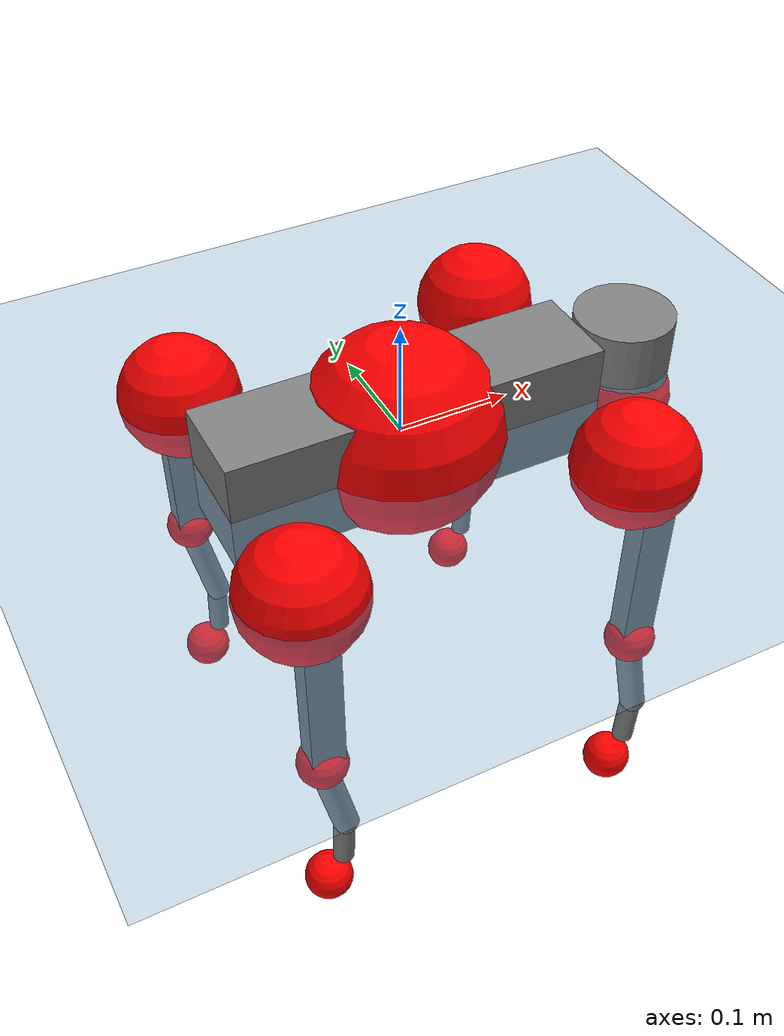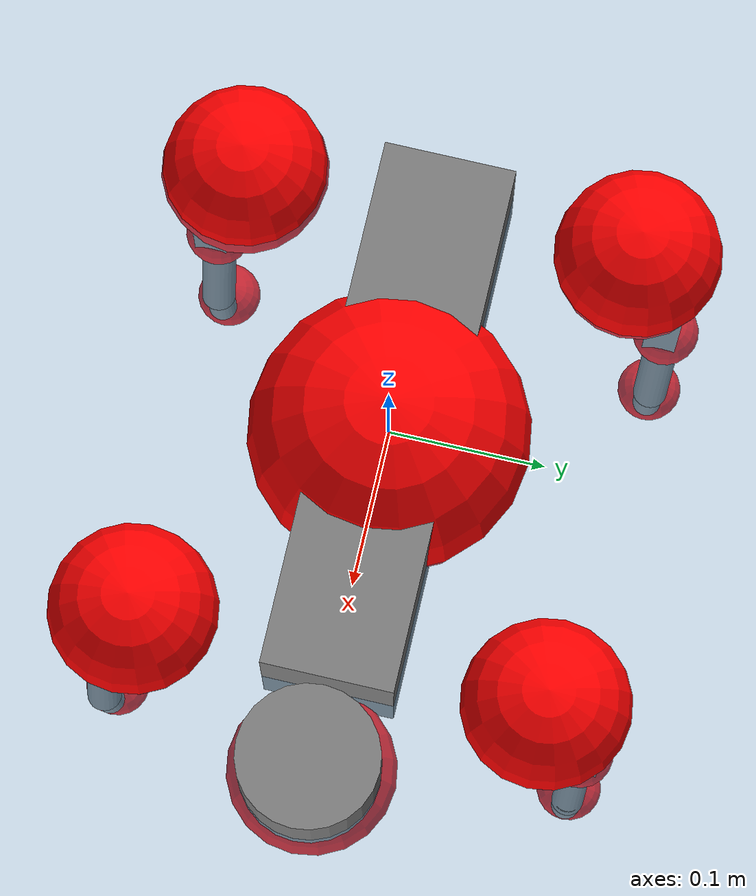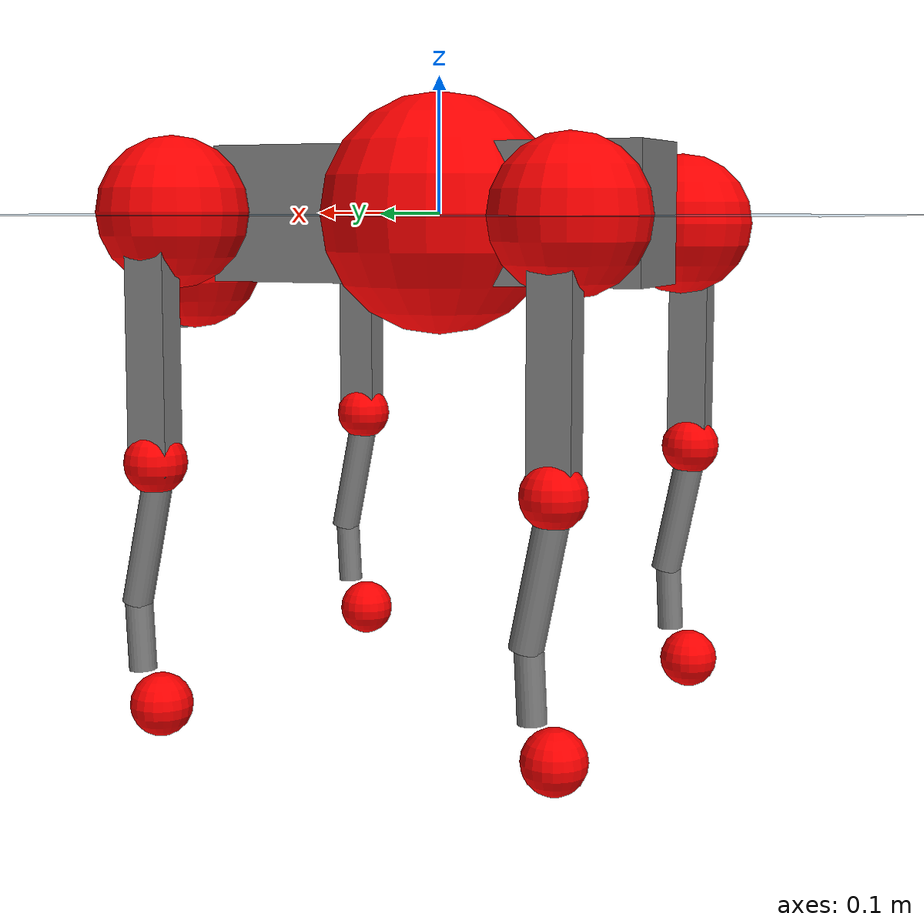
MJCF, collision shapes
<mujoco model="go2">
  <compiler angle="radian" assetdir="assets" balanceinertia="true" inertiafromgeom="false"/>

  <option timestep="0.005" density="1.2" viscosity="2e-05"/>

  <size nkey="1"/>

  <visual>
    <quality shadowsize="8192"/>
    <map shadowclip="0.5"/>
  </visual>

  <default>
    <default class="/">
      <geom contype="0" conaffinity="0" group="1" solref="-1000 -80"/>
      <site size="0.01 0.005 0.005" group="5"/>
      <general forcelimited="true" biastype="affine" gainprm="20" biasprm="0 -20 -0.5"/>
      <default class="go2">
        <joint armature="0.01" damping="0.01" frictionloss="0.2"/>
        <geom condim="1" margin="0.001"/>
        <default class="visual">
          <geom type="mesh" group="2"/>
        </default>
        <default class="collision">
          <geom group="3"/>
          <default class="foot">
            <geom size="0.022 0 0" condim="6" priority="1" friction="0.8 0.02 0.01" solimp="0.015 1 0.022"/>
          </default>
        </default>
        <default class="reward_collision_sphere">
          <geom group="5" rgba="1 0 0 1"/>
        </default>
      </default>
    </default>
  </default>

  <asset>
    <texture type="skybox" colorspace="auto" name="//unnamed_texture_0" builtin="gradient" rgb1="0.95 0.95 0.95" rgb2="0.95 0.95 0.95" width="100" height="600"/>
    <texture type="2d" colorspace="auto" name="texplane" builtin="checker" rgb1="0.345 0.575 0.748" rgb2="0.345 0.575 0.748" markrgb="1 1 1" width="512" height="512"/>
    <material name="MatPlane" class="/" texture="texplane" texuniform="true" texrepeat="2 2" specular="0.9"/>
    <material name="metal" class="/" rgba="0.9 0.95 0.95 1"/>
    <material name="black" class="/" rgba="0 0 0 1"/>
    <material name="white" class="/"/>
    <material name="gray" class="/" rgba="0.671705 0.692426 0.77427 1"/>
    <mesh name="base_0" class="/" file="base_0.obj"/>
    <mesh name="base_1" class="/" file="base_1.obj"/>
    <mesh name="base_2" class="/" file="base_2.obj"/>
    <mesh name="base_3" class="/" file="base_3.obj"/>
    <mesh name="base_4" class="/" file="base_4.obj"/>
    <mesh name="hip_0" class="/" file="hip_0.obj"/>
    <mesh name="hip_1" class="/" file="hip_1.obj"/>
    <mesh name="thigh_0" class="/" file="thigh_0.obj"/>
    <mesh name="thigh_1" class="/" file="thigh_1.obj"/>
    <mesh name="thigh_mirror_0" class="/" file="thigh_mirror_0.obj"/>
    <mesh name="thigh_mirror_1" class="/" file="thigh_mirror_1.obj"/>
    <mesh name="calf_0" class="/" file="calf_0.obj"/>
    <mesh name="calf_1" class="/" file="calf_1.obj"/>
    <mesh name="calf_mirror_0" class="/" file="calf_mirror_0.obj"/>
    <mesh name="calf_mirror_1" class="/" file="calf_mirror_1.obj"/>
    <mesh name="foot" class="/" file="foot.obj"/>
  </asset>

  <worldbody>
    <geom name="floor" class="/" size="100 100 0.125" type="plane" group="0" material="MatPlane"/>
    <light name="toplight_shadow" class="/" pos="0 0 5" dir="0.0990148 0.0990148 -0.990148" type="directional" ambient="0.04 0.04 0.04" diffuse="0.55 0.55 0.55" specular="0.12 0.12 0.12"/>
    <light name="toplight_fill" class="/" pos="0 0 5" dir="0.0990148 0.0990148 -0.990148" type="directional" castshadow="false" ambient="0.04 0.04 0.04" diffuse="0.3 0.3 0.3" specular="0.08 0.08 0.08"/>
    <body name="trunk" childclass="go2" pos="-0.00012325 0.0001905 3.90447e-05" quat="1 -5.14348e-05 0.000257983 -0.000183749">
      <inertial pos="0.0156965 0.00142851 -0.0042244" quat="-0.00336845 0.715414 -0.00354981 0.698684" mass="4.80422" diaginertia="0.0275422 0.163761 0.00850177"/>
      <joint name="//unnamed_joint_0" type="free" armature="0" damping="0" frictionloss="0"/>
      <geom name="//unnamed_geom_1" class="visual" material="black" mesh="base_0"/>
      <geom name="//unnamed_geom_2" class="visual" material="black" mesh="base_1"/>
      <geom name="//unnamed_geom_3" class="visual" material="black" mesh="base_2"/>
      <geom name="//unnamed_geom_4" class="visual" material="white" mesh="base_3"/>
      <geom name="//unnamed_geom_5" class="visual" material="gray" mesh="base_4"/>
      <geom name="trunk_1" class="collision" size="0.168507 0.0418803 0.0510626" type="box"/>
      <geom name="trunk_2" class="collision" size="0.0447917 0.0403126" pos="0.217381 0 0.00812618" type="cylinder"/>
      <geom name="trunk_3" class="collision" size="0.0421042" pos="0.223483 0 -0.0487571"/>
      <geom name="//unnamed_geom_9" class="reward_collision_sphere" size="0.0895835"/>
      <geom name="//unnamed_geom_10" class="reward_collision_sphere" size="0.0537501" pos="0.213567 0 -0.0365678"/>
      <site name="imu" pos="-0.0152912 0.0137816 0.0244858" size="0.00895835"/>
      <camera name="track" pos="0 -2.22429 0" quat="0.707107 0.707107 0 0" mode="trackcom"/>
      <camera name="ego_camera" pos="0.237975 0 0.0365678" quat="-0.5 -0.5 0.5 0.5"/>
      <body name="FL_hip" pos="0.146043 0.0555819 0.00117198" quat="1 -8.60667e-05 -0.000338351 -8.73234e-05">
        <inertial pos="-0.00518296 0.00137449 0.000506366" quat="0.496567 0.498996 0.505813 0.498576" mass="0.47023" diaginertia="0.000226461 0.000955176 0.000164348"/>
        <joint name="FL_hip_joint" pos="0 0 0" axis="0.999997 0.00181155 -0.00139992" range="-1.05468 1.10562" armature="0.00899961" damping="0" frictionloss="0.20447"/>
        <geom name="//unnamed_geom_11" class="visual" material="metal" mesh="hip_0"/>
        <geom name="//unnamed_geom_12" class="visual" material="gray" mesh="hip_1"/>
        <geom name="//unnamed_geom_13" class="collision" size="0.0412084 0.0179167" pos="0 0.0889716 0" quat="0.707107 0.707107 0 0" type="cylinder"/>
        <geom name="//unnamed_geom_14" class="reward_collision_sphere" size="0.0537501" pos="0 0.0778502 0"/>
        <body name="FL_thigh" pos="-0.00220695 0.109074 -0.000216277" quat="1 8.43615e-05 1.20835e-05 -7.82423e-05">
          <inertial pos="-0.00338986 -0.0250202 -0.025393" quat="0.833092 0.0760174 -0.0165109 0.547637" mass="0.828416" diaginertia="0.00153024 0.0097696 0.000299384"/>
          <joint name="FL_thigh_joint" pos="0 0 0" axis="-0.00593487 0.999954 -0.00758351" stiffness="0.00189929" range="-1.62399 3.50407" armature="0.00804946" damping="0.0176093" frictionloss="0.180197"/>
          <geom name="//unnamed_geom_15" class="visual" material="metal" mesh="thigh_0"/>
          <geom name="//unnamed_geom_16" class="visual" material="gray" mesh="thigh_1"/>
          <geom name="//unnamed_geom_17" class="collision" size="0.0954064 0.010974 0.0152292" pos="0 0 -0.0865438" quat="0.707107 0 0.707107 0" type="box"/>
          <body name="FL_calf" pos="0.00117044 -0.00241148 -0.174089" quat="1 0.000144661 -1.54435e-05 -7.38174e-06">
            <inertial pos="0.00568564 -0.00114729 -0.113349" quat="0.711034 0.00620623 -0.00265536 0.703125" mass="0.175365" diaginertia="0.000385492 0.00250377 1.90339e-05"/>
            <joint name="FL_calf_joint" pos="0 0 0" axis="-0.00455852 0.999927 0.0112304" range="-2.70774 -0.781178" armature="0.00828889" damping="0" frictionloss="0.176373"/>
            <geom name="//unnamed_geom_18" class="visual" material="gray" mesh="calf_0"/>
            <geom name="//unnamed_geom_19" class="visual" material="black" mesh="calf_1"/>
            <geom name="FL_calf0" class="collision" size="0.01075 0.0537501" pos="0.00610193 0 -0.0487571" quat="0.994493 0 -0.104807 0" type="cylinder"/>
            <geom name="//unnamed_geom_21" class="collision" size="0.00985418 0.0291146" pos="0.0152548 0 -0.120267" quat="0.999688 0 0.0249974 0" type="cylinder"/>
            <geom name="//unnamed_geom_22" class="visual" pos="0 0 -0.173088" quat="1 0 0 0" material="black" mesh="foot"/>
            <geom name="FL_foot" class="foot" size="0.0158356" pos="-0.00152548 0 -0.173088"/>
            <geom name="//unnamed_geom_24" class="reward_collision_sphere" size="0.0223959"/>
            <geom name="//unnamed_geom_25" class="reward_collision_sphere" size="0.0223959" pos="-0.00152548 0 -0.173088"/>
            <site name="FL_foot" class="foot" pos="-0.00152548 0 -0.173088" size="0.00895835"/>
          </body>
        </body>
      </body>
      <body name="FR_hip" pos="0.146194 -0.0511664 0.00326005" quat="1 -0.000118607 8.42148e-05 1.01894e-05">
        <inertial pos="-0.00617034 -0.00261943 -0.00142499" quat="0.49801 0.506272 0.498769 0.496895" mass="0.473375" diaginertia="0.000223964 0.00099659 0.000165765"/>
        <joint name="FR_hip_joint" pos="0 0 0" axis="0.999907 0.00185736 0.0135397" range="-1.05134 0.992441" armature="0.00961457" damping="0" frictionloss="0.202574"/>
        <geom name="//unnamed_geom_26" class="visual" pos="0 2.60936e-09 1.11921e-07" quat="4.63268e-05 1 0 0" material="metal" mesh="hip_0"/>
        <geom name="//unnamed_geom_27" class="visual" pos="0 4.23008e-09 -2.76823e-07" quat="4.63268e-05 1 0 0" material="gray" mesh="hip_1"/>
        <geom name="//unnamed_geom_28" class="collision" size="0.0412084 0.0179167" pos="0 -0.0889716 0" quat="0.707107 0.707107 0 0" type="cylinder"/>
        <geom name="//unnamed_geom_29" class="reward_collision_sphere" size="0.0537501" pos="0 -0.0778502 0"/>
        <body name="FR_thigh" pos="-7.92382e-05 -0.108957 -0.00297898" quat="0.999999 -0.00128918 0.000115956 -0.000445432">
          <inertial pos="-0.00496675 0.0238418 -0.029182" quat="0.549702 -0.0261121 0.0916832 0.829904" mass="0.847778" diaginertia="0.00151373 0.00969664 0.000321373"/>
          <joint name="FR_thigh_joint" pos="0 0 0" axis="-0.00116304 -0.999999 0.000441211" stiffness="0.00632167" range="-3.48577 1.51384" armature="0.00761782" damping="0.0176603" frictionloss="0.162017"/>
          <geom name="//unnamed_geom_30" class="visual" material="metal" mesh="thigh_mirror_0"/>
          <geom name="//unnamed_geom_31" class="visual" material="gray" mesh="thigh_mirror_1"/>
          <geom name="//unnamed_geom_32" class="collision" size="0.0954064 0.010974 0.0152292" pos="0 0 -0.0865438" quat="0.707107 0 0.707107 0" type="box"/>
          <body name="FR_calf" pos="-0.000927951 -0.00116986 -0.173128" quat="1 -0.00011789 0.000430855 0.000260968">
            <inertial pos="0.00327242 -0.000102874 -0.11345" quat="0.70171 -0.00425831 0.00257901 0.712445" mass="0.170995" diaginertia="0.000385418 0.00250401 1.80306e-05"/>
            <joint name="FR_calf_joint" pos="0 0 0" axis="0.00331678 -0.999988 -0.00367243" range="0.852224 2.73023" armature="0.00882301" damping="0.000384763" frictionloss="0.153995"/>
            <geom name="//unnamed_geom_33" class="visual" material="gray" mesh="calf_mirror_0"/>
            <geom name="//unnamed_geom_34" class="visual" material="black" mesh="calf_mirror_1"/>
            <geom name="FR_calf0" class="collision" size="0.0116459 0.0537501" pos="0.00762741 0 -0.0487571" quat="0.995004 0 -0.0998334 0" type="cylinder"/>
            <geom name="//unnamed_geom_36" class="collision" size="0.00985418 0.0291146" pos="0.0152548 0 -0.120267" quat="0.999688 0 0.0249974 0" type="cylinder"/>
            <geom name="//unnamed_geom_37" class="visual" pos="0 0 -0.173088" quat="1 0 0 0" material="black" mesh="foot"/>
            <geom name="FR_foot" class="foot" size="0.0206843" pos="-0.00152548 0 -0.173088"/>
            <geom name="//unnamed_geom_39" class="reward_collision_sphere" size="0.0223959"/>
            <geom name="//unnamed_geom_40" class="reward_collision_sphere" size="0.0223959" pos="-0.00152548 0 -0.173088"/>
            <site name="FR_foot" class="foot" pos="-0.00152548 0 -0.173088" size="0.00895835"/>
          </body>
        </body>
      </body>
      <body name="RL_hip" pos="-0.147569 0.0494217 -0.0005204" quat="0.999999 -0.00125087 0.000374657 0.000480004">
        <inertial pos="0.00209358 0.0012325 6.82848e-05" quat="0.505425 0.503117 0.502638 0.488645" mass="0.472893" diaginertia="0.000212615 0.00101109 0.000160001"/>
        <joint name="RL_hip_joint" pos="0 0 0" axis="-0.999995 0.00213139 0.00231941" range="-1.07337 1.06208" armature="0.00963308" damping="0.0174474" frictionloss="0.174592"/>
        <geom name="//unnamed_geom_41" class="visual" pos="4.34511e-10 0 8.51741e-08" quat="4.63268e-05 0 1 0" material="metal" mesh="hip_0"/>
        <geom name="//unnamed_geom_42" class="visual" pos="7.04394e-10 0 7.55373e-08" quat="4.63268e-05 0 1 0" material="gray" mesh="hip_1"/>
        <geom name="//unnamed_geom_43" class="collision" size="0.0412084 0.0179167" pos="0 0.0889716 0" quat="0.707107 0.707107 0 0" type="cylinder"/>
        <geom name="//unnamed_geom_44" class="reward_collision_sphere" size="0.0537501" pos="0 0.0778502 0"/>
        <body name="RL_thigh" pos="-0.00057595 0.105092 -0.00266555" quat="0.999999 -0.00021506 -0.00110092 0.000311571">
          <inertial pos="-0.0033956 -0.0268909 -0.0262339" quat="0.829467 0.0842401 -0.0201621 0.551799" mass="0.828782" diaginertia="0.00152971 0.00984098 0.000317188"/>
          <joint name="RL_thigh_joint" pos="0 0 0" axis="0.00236056 0.999997 -0.000384175" stiffness="0.0134703" range="-0.574742 4.52249" armature="0.0085229" damping="0.0180175" frictionloss="0.20406"/>
          <geom name="//unnamed_geom_45" class="visual" material="metal" mesh="thigh_0"/>
          <geom name="//unnamed_geom_46" class="visual" material="gray" mesh="thigh_1"/>
          <geom name="//unnamed_geom_47" class="collision" size="0.0954064 0.010974 0.0152292" pos="0 0 -0.0865438" quat="0.707107 0 0.707107 0" type="box"/>
          <body name="RL_calf" pos="-0.000836402 0.00253318 -0.174501" quat="1 -0.000666828 0.000638979 0.000139014">
            <inertial pos="0.00461769 0.00177216 -0.114401" quat="0.710433 0.0045183 -0.00804237 0.703704" mass="0.166306" diaginertia="0.000375288 0.00233191 1.8895e-05"/>
            <joint name="RL_calf_joint" pos="0 0 0" axis="-0.0121704 0.999923 0.00240617" range="-2.71552 -0.81912" armature="0.00932072" damping="0.00973298" frictionloss="0.175066"/>
            <geom name="//unnamed_geom_48" class="visual" material="gray" mesh="calf_0"/>
            <geom name="//unnamed_geom_49" class="visual" material="black" mesh="calf_1"/>
            <geom name="RL_calf0" class="collision" size="0.0116459 0.0537501" pos="0.00762741 0 -0.0487571" quat="0.995004 0 -0.0998334 0" type="cylinder"/>
            <geom name="//unnamed_geom_51" class="collision" size="0.00985418 0.0291146" pos="0.0152548 0 -0.120267" quat="0.999688 0 0.0249974 0" type="cylinder"/>
            <geom name="//unnamed_geom_52" class="visual" pos="0 0 -0.173088" quat="1 0 0 0" material="black" mesh="foot"/>
            <geom name="RL_foot" class="foot" size="0.0209208" pos="-0.00152548 0 -0.173088"/>
            <geom name="//unnamed_geom_54" class="reward_collision_sphere" size="0.0223959"/>
            <geom name="//unnamed_geom_55" class="reward_collision_sphere" size="0.0223959" pos="-0.00152548 0 -0.173088"/>
            <site name="RL_foot" class="foot" pos="-0.00152548 0 -0.173088" size="0.00895835"/>
          </body>
        </body>
      </body>
      <body name="RR_hip" pos="-0.147926 -0.0506275 -0.00811201" quat="1 0.000126491 -6.1976e-05 -0.000161471">
        <inertial pos="0.00216097 -0.00465486 0.000887437" quat="0.496588 0.496653 0.501264 0.505442" mass="0.492837" diaginertia="0.00022936 0.00100341 0.000175946"/>
        <joint name="RR_hip_joint" pos="0 0 0" axis="-0.999994 0.00151293 0.00313723" range="-1.10127 1.04668" armature="0.00897472" damping="0.000949292" frictionloss="0.173321"/>
        <geom name="//unnamed_geom_56" class="visual" pos="-4.22414e-10 2.60936e-09 -2.67466e-08" quat="2.14617e-09 4.63268e-05 4.63268e-05 -1" material="metal" mesh="hip_0"/>
        <geom name="//unnamed_geom_57" class="visual" pos="-7.34313e-10 4.23008e-09 3.5236e-07" quat="2.14617e-09 4.63268e-05 4.63268e-05 -1" material="gray" mesh="hip_1"/>
        <geom name="//unnamed_geom_58" class="collision" size="0.0412084 0.0179167" pos="0 -0.0889716 0" quat="0.707107 0.707107 0 0" type="cylinder"/>
        <geom name="//unnamed_geom_59" class="reward_collision_sphere" size="0.0537501" pos="0 -0.0778502 0"/>
        <body name="RR_thigh" pos="-0.00127326 -0.104426 -0.00205272" quat="1 0.000277061 -0.000470378 -2.71644e-05">
          <inertial pos="-0.00114476 0.0220135 -0.0255098" quat="0.55965 -0.0268764 0.0796117 0.824458" mass="0.81085" diaginertia="0.00152125 0.00970676 0.000308411"/>
          <joint name="RR_thigh_joint" pos="0 0 0" axis="0.019672 -0.999791 -0.00562938" range="-4.53305 0.482457" armature="0.00886951" damping="0" frictionloss="0.163716"/>
          <geom name="//unnamed_geom_60" class="visual" material="metal" mesh="thigh_mirror_0"/>
          <geom name="//unnamed_geom_61" class="visual" material="gray" mesh="thigh_mirror_1"/>
          <geom name="//unnamed_geom_62" class="collision" size="0.0954064 0.010974 0.0152292" pos="0 0 -0.0865438" quat="0.707107 0 0.707107 0" type="box"/>
          <body name="RR_calf" pos="-0.00135872 0.00137191 -0.174161" quat="1 -0.000105144 -0.000177573 -0.000371591">
            <inertial pos="0.00663769 5.77252e-05 -0.114323" quat="0.704308 -0.00775903 0.00378312 0.709842" mass="0.177392" diaginertia="0.000395568 0.00266502 1.93218e-05"/>
            <joint name="RR_calf_joint" pos="0 0 0" axis="0.000513798 -1 0.000483381" range="0.861614 2.69308" armature="0.00897044" damping="0.00930788" frictionloss="0.162462"/>
            <geom name="//unnamed_geom_63" class="visual" material="gray" mesh="calf_mirror_0"/>
            <geom name="//unnamed_geom_64" class="visual" material="black" mesh="calf_mirror_1"/>
            <geom name="RR_calf0" class="collision" size="0.0116459 0.0537501" pos="0.00762741 0 -0.0487571" quat="0.995004 0 -0.0998334 0" type="cylinder"/>
            <geom name="//unnamed_geom_66" class="collision" size="0.00985418 0.0291146" pos="0.0152548 0 -0.120267" quat="0.999688 0 0.0249974 0" type="cylinder"/>
            <geom name="//unnamed_geom_67" class="visual" pos="0 0 -0.173088" quat="1 0 0 0" material="black" mesh="foot"/>
            <geom name="RR_foot" class="foot" size="0.0205508" pos="-0.00152548 0 -0.173088"/>
            <geom name="//unnamed_geom_69" class="reward_collision_sphere" size="0.0223959"/>
            <geom name="//unnamed_geom_70" class="reward_collision_sphere" size="0.0223959" pos="-0.00152548 0 -0.173088"/>
            <site name="RR_foot" class="foot" pos="-0.00152548 0 -0.173088" size="0.00895835"/>
          </body>
        </body>
      </body>
    </body>
  </worldbody>

  <contact>
    <pair class="/" geom1="floor" geom2="FL_foot" name="//unnamed_contact_0"/>
    <pair class="/" geom1="floor" geom2="FR_foot" name="//unnamed_contact_1"/>
    <pair class="/" geom1="floor" geom2="RL_foot" name="//unnamed_contact_2"/>
    <pair class="/" geom1="floor" geom2="RR_foot" name="//unnamed_contact_3"/>
  </contact>

  <actuator>
    <general name="FL_hip" class="/" joint="FL_hip_joint" forcerange="-21.9678 21.9678" gainprm="18.5173" biasprm="0 -18.5173 -0.424605"/>
    <general name="FL_thigh" class="/" joint="FL_thigh_joint" forcerange="-21.8155 21.8155" gainprm="18.5173" biasprm="0 -18.5173 -0.424605"/>
    <general name="FL_calf" class="/" joint="FL_calf_joint" forcerange="-44.9299 44.9299" gainprm="18.5173" biasprm="0 -18.5173 -0.424605"/>
    <general name="FR_hip" class="/" joint="FR_hip_joint" forcerange="-20.7901 20.7901" gainprm="18.5173" biasprm="0 -18.5173 -0.424605"/>
    <general name="FR_thigh" class="/" joint="FR_thigh_joint" forcerange="-23.4209 23.4209" gainprm="18.5173" biasprm="0 -18.5173 -0.424605"/>
    <general name="FR_calf" class="/" joint="FR_calf_joint" forcerange="-40.4158 40.4158" gainprm="18.5173" biasprm="0 -18.5173 -0.424605"/>
    <general name="RL_hip" class="/" joint="RL_hip_joint" forcerange="-21.5427 21.5427" gainprm="18.5173" biasprm="0 -18.5173 -0.424605"/>
    <general name="RL_thigh" class="/" joint="RL_thigh_joint" forcerange="-21.1922 21.1922" gainprm="18.5173" biasprm="0 -18.5173 -0.424605"/>
    <general name="RL_calf" class="/" joint="RL_calf_joint" forcerange="-42.3574 42.3574" gainprm="18.5173" biasprm="0 -18.5173 -0.424605"/>
    <general name="RR_hip" class="/" joint="RR_hip_joint" forcerange="-21.0189 21.0189" gainprm="18.5173" biasprm="0 -18.5173 -0.424605"/>
    <general name="RR_thigh" class="/" joint="RR_thigh_joint" forcerange="-19.3008 19.3008" gainprm="18.5173" biasprm="0 -18.5173 -0.424605"/>
    <general name="RR_calf" class="/" joint="RR_calf_joint" forcerange="-44.8989 44.8989" gainprm="18.5173" biasprm="0 -18.5173 -0.424605"/>
  </actuator>

  <sensor>
    <gyro site="imu" name="imu_angular_velocity"/>
    <velocimeter site="imu" name="imu_linear_velocity"/>
    <framelinvel objtype="site" objname="FL_foot" name="FL_foot_global_linear_velocity"/>
    <framelinvel objtype="site" objname="FR_foot" name="FR_foot_global_linear_velocity"/>
    <framelinvel objtype="site" objname="RL_foot" name="RL_foot_global_linear_velocity"/>
    <framelinvel objtype="site" objname="RR_foot" name="RR_foot_global_linear_velocity"/>
  </sensor>

  <keyframe>
    <key name="home" qpos="0 0 0.325 1 0 0 0 0.1 0.8 -1.5 -0.1 -0.8 1.5 -0.1 0.8 -1.5 0.1 -0.8 1.5"/>
  </keyframe>
</mujoco>
